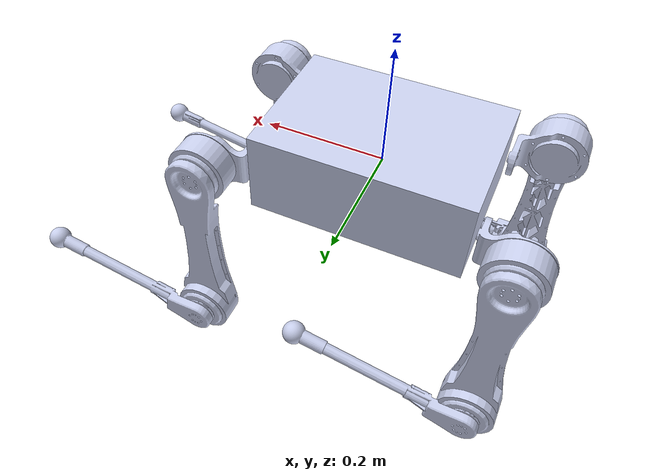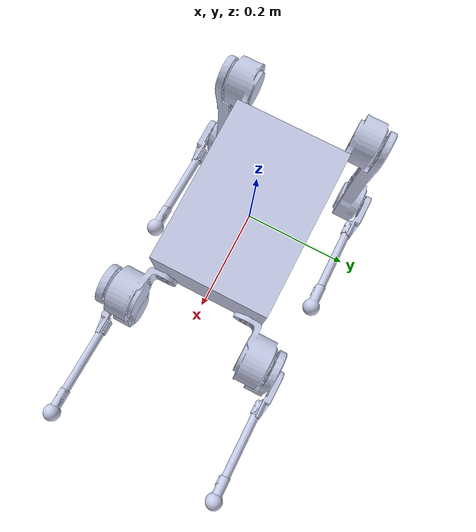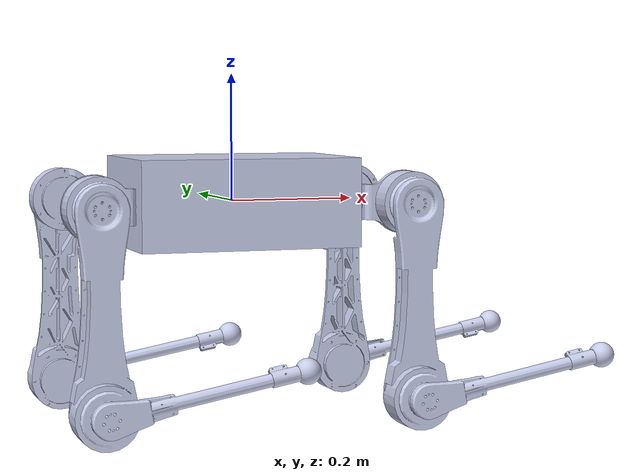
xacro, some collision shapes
<?xml version="1.0"?>

<robot xmlns:xacro="http://www.ros.org/wiki/xacro" name="lion">

    <xacro:include filename="$(find lion_description)/common/transmission.xacro"/>
    <xacro:include filename="$(find lion_description)/common/gazebo.xacro"/>
    <xacro:include filename="$(find lion_description)/common/imu.xacro"/>

        <!--Robot Model*******************************************************************************************-->
        <link name="base">
          <inertial>
            <origin rpy="0 0 0" xyz="-0.000638750070817345 -0.00672058356158241 -0.00556735378698432"/>
            <mass value="8.286"/>
            <inertia ixx="0.056529" ixy="-0.001107" ixz="-3.045E-05" iyy="0.14156" iyz="-0.0011531" izz="0.17939"/>
            </inertial>
          <visual>
            <origin rpy="0 0 0" xyz="0 0 0"/>
            <geometry>
              <mesh filename="package://lion_description/meshes/base_link.STL"/>
            </geometry>
            <material name="">
              <color rgba="0.792156862745098 0.819607843137255 0.933333333333333 1"/>
            </material>
          </visual>
          <collision>
            <origin rpy="0 0 0" xyz="0 0 0"/>
            <geometry>
                <box size="0.35 0.24 0.14"/>
            </geometry>
          </collision>
        </link>
        <link name="RF_hip">
          <inertial>
            <origin rpy="0 0 0" xyz="-0.0050797 -0.047183 4.172E-05"/>
            <mass value="1.095"/>
            <inertia ixx="0.0010035" ixy="-0.00021789" ixz="1.433E-06" iyy="0.0014762" iyz="1.005E-06" izz="0.0012507"/>
          </inertial>
          <visual>
            <origin rpy="0 0 0" xyz="0 0 0"/>
            <geometry>
              <mesh filename="package://lion_description/meshes/hip_Link.STL"/>
            </geometry>
            <material name="">
              <color rgba="0.79216 0.81961 0.93333 1"/>
            </material>
          </visual>
          <collision>
            <origin rpy="${pi/2.0} 0 0" xyz="0.0 -0.05 0"/>
            <geometry>
                <cylinder length="0.06" radius="0.05"/>
            </geometry>
          </collision>
        </link>
        <joint name="RF_HAA" type="revolute">
          <origin rpy="0.0 0.0 0 " xyz="0.2467 -0.09 0"/>
          <parent link="base"/>
          <child link="RF_hip"/>
          <axis xyz="1 0 0"/>
          <limit effort="55" lower="-1.0" upper="1.0" velocity="30"/>
        </joint>
        <link name="RF_thigh">
          <inertial>''
            <origin rpy="0 0 0" xyz="-2.7705E-05 -0.089684 -0.23198"/>
            <mass value="1.556"/>
            <inertia ixx="0.015631" ixy="-8.61E-07" ixz="-6.078E-06" iyy="0.016183" iyz="0.0004689" izz="0.0011163"/>
          </inertial>
          <visual>
            <origin rpy="0 0 0" xyz="0 0 0"/>
            <geometry>
              <mesh filename="package://lion_description/meshes/thigh_Link.STL"/>
            </geometry>
            <material name="">
              <color rgba="0.79216 0.81961 0.93333 1"/>
            </material>
          </visual>
          <collision>
            <origin rpy="${pi/2.0} 0 0" xyz="0 -0.09 -0.3"/>
            <geometry>
                <cylinder length="0.06" radius="0.05"/>
            </geometry>
          </collision>
        </link>
        <joint name="RF_HFE" type="revolute">
          <origin rpy="0 0.0 0" xyz="0 0 0"/>
          <parent link="RF_hip"/>
          <child link="RF_thigh"/>
          <axis xyz="0 1 0"/>
          <limit effort="55" lower="-3.0" upper="3.0" velocity="30"/>
        </joint>
        <link name="RF_calf">
          <inertial>
            <origin rpy="0 0 0" xyz="2.05E-06 -0.12517 -0.080832"/>
            <mass value="0.233"/>
            <inertia ixx="0.0033053" ixy="-3.64E-07" ixz="4.028E-06" iyy="0.0033126" iyz="-0.00013194" izz="4.3236E-05"/>
          </inertial>
          <visual>
            <origin rpy="0 0 0" xyz="0 0 0"/>
            <geometry>
              <mesh filename="package://lion_description/meshes/shank_Link.STL"/>
            </geometry>
            <material name="">
              <color rgba="0.79216 0.81961 0.93333 1"/>
            </material>
          </visual>
          <collision>
            <origin rpy="0 0 0" xyz="0 -0.119 -0.15"/>
            <geometry>
              <cylinder length="0.2" radius="0.01"/>
            </geometry>
          </collision>
        </link>
        <joint name="RF_KFE" type="revolute">
          <origin rpy="0 0 0" xyz="0 0 -0.3"/>
          <parent link="RF_thigh"/>
          <child link="RF_calf"/>
          <axis xyz="0 1 0"/>
          <limit effort="55" lower="-3.0" upper="-0.5" velocity="30"/>
        </joint>
        <link name="RF_FOOT">
          <inertial>
            <origin rpy="0 0 0" xyz="0.0002617 0.00017365 0.0085579"/>
            <mass value="0.01"/>
            <inertia ixx="0.001983" ixy="0.000245" ixz="0.000013"
                      iyy="0.002103" iyz="0.0000015" izz="0.000408"/>
          </inertial>
          <visual>
            <origin rpy="0 0 0" xyz="0 0 0"/>
            <geometry>
              <mesh filename="package://lion_description/meshes/foot_Link.STL"/>
            </geometry>
            <material name="">
              <color rgba="0.79216 0.81961 0.93333 1"/>
            </material>
          </visual>
          <collision>
            <origin rpy="0 0 0" xyz="0 0 0.002"/>
            <geometry>
                <sphere radius="0.02"/>
            </geometry>
          </collision>
        </link>
        <joint name="JointFR_foot" type="fixed">
          <origin rpy="0 0 0" xyz="0 -0.119 -0.3105"/>
          <parent link="RF_calf"/>
          <child link="RF_FOOT"/>
          <axis xyz="0 0 1"/>

        </joint>
        <link name="LF_hip">
          <inertial>
            <origin rpy="0 0 0" xyz="-0.0050797 -0.047183 4.172E-05"/>
            <mass value="1.095"/>
            <inertia ixx="0.0010035" ixy="-0.00021789" ixz="1.433E-06" iyy="0.0014762" iyz="1.005E-06" izz="0.0012507"/>
          </inertial>
          <visual>
            <origin rpy="0 0 0" xyz="0 0 0"/>
            <geometry>
              <mesh filename="package://lion_description/meshes/hip_Link.STL"/>
            </geometry>
            <material name="">
              <color rgba="0.79216 0.81961 0.93333 1"/>
            </material>
          </visual>
          <collision>
            <origin rpy="${pi/2.0} 0 0" xyz="0.0 -0.05 0"/>
            <geometry>
                <cylinder length="0.06" radius="0.05"/>
            </geometry>
          </collision>
        </link>
        <joint name="LF_HAA" type="revolute">
          <origin rpy="3.141592653589793 0.0 0 " xyz="0.2467 0.09 0"/>
          <parent link="base"/>
          <child link="LF_hip"/>
          <axis xyz="1 0 0"/>
          <limit effort="55" lower="-1.0" upper="1.0" velocity="30"/>
        </joint>
        <link name="LF_thigh">
          <inertial>
            <origin rpy="0 0 0" xyz="-2.7705E-05 -0.089684 -0.23198"/>
            <mass value="1.556"/>
            <inertia ixx="0.015631" ixy="-8.61E-07" ixz="-6.078E-06" iyy="0.016183" iyz="0.0004689" izz="0.0011163"/>
          </inertial>
          <visual>
            <origin rpy="0 0 0" xyz="0 0 0"/>
            <geometry>
              <mesh filename="package://lion_description/meshes/thigh_Link.STL"/>
            </geometry>
            <material name="">
              <color rgba="0.79216 0.81961 0.93333 1"/>
            </material>
          </visual>
          <collision>
            <origin rpy="${pi/2.0} 0 0" xyz="0 -0.09 -0.3"/>
            <geometry>
                <cylinder length="0.06" radius="0.05"/>
            </geometry>
          </collision>
        </link>
        <joint name="LF_HFE" type="revolute">
          <origin rpy="0 3.141592653589793 0" xyz="0 0 0"/>
          <parent link="LF_hip"/>
          <child link="LF_thigh"/>
          <axis xyz="0 -1 0"/>
          <limit effort="55" lower="-3.0" upper="3.0" velocity="30"/>
        </joint>
        <link name="LF_calf">
          <inertial>
            <origin rpy="0 0 0" xyz="2.05E-06 -0.12517 -0.080832"/>
            <mass value="0.233"/>
            <inertia ixx="0.0033053" ixy="-3.64E-07" ixz="4.028E-06" iyy="0.0033126" iyz="-0.00013194" izz="4.3236E-05"/>
          </inertial>
          <visual>
            <origin rpy="0 0 0" xyz="0 0 0"/>
            <geometry>
              <mesh filename="package://lion_description/meshes/shank_Link.STL"/>
            </geometry>
            <material name="">
              <color rgba="0.79216 0.81961 0.93333 1"/>
            </material>
          </visual>
          <collision>
            <origin rpy="0 0 0" xyz="0 -0.119 -0.15"/>
            <geometry>
              <cylinder length="0.2" radius="0.01"/>
            </geometry>
          </collision>
        </link>
        <joint name="LF_KFE" type="revolute">
          <origin rpy="0 0 0" xyz="0 0 -0.3"/>
          <parent link="LF_thigh"/>
          <child link="LF_calf"/>
          <axis xyz="0 -1 0"/>
          <limit effort="55" lower="-3.0" upper="-0.5" velocity="30"/>
        </joint>
        <link name="LF_FOOT">
          <inertial>
            <origin rpy="0 0 0" xyz="0.0002617 0.00017365 0.0085579"/>
            <mass value="0.01"/>
            <inertia ixx="0.001983" ixy="0.000245" ixz="0.000013"
                      iyy="0.002103" iyz="0.0000015" izz="0.000408"/>
          </inertial>
          <visual>
            <origin rpy="0 0 0" xyz="0 0 0"/>
            <geometry>
              <mesh filename="package://lion_description/meshes/foot_Link.STL"/>
            </geometry>
            <material name="">
              <color rgba="0.79216 0.81961 0.93333 1"/>
            </material>
          </visual>
          <collision>
            <origin rpy="0 0 0" xyz="0 0 0.002"/>
            <geometry>
                <sphere radius="0.02"/>
            </geometry>
          </collision>
        </link>
        <joint name="JointFL_foot" type="fixed">
          <origin rpy="0 0 0" xyz="0 -0.119 -0.3105"/>
          <parent link="LF_calf"/>
          <child link="LF_FOOT"/>
          <axis xyz="0 0 1"/>

        </joint>
        <link name="RH_hip">
          <inertial>
            <origin rpy="0 0 0" xyz="-0.0050797 -0.047183 4.172E-05"/>
            <mass value="1.095"/>
            <inertia ixx="0.0010035" ixy="-0.00021789" ixz="1.433E-06" iyy="0.0014762" iyz="1.005E-06" izz="0.0012507"/>
          </inertial>
          <visual>
            <origin rpy="0 0 0" xyz="0 0 0"/>
            <geometry>
              <mesh filename="package://lion_description/meshes/hip_Link.STL"/>
            </geometry>
            <material name="">
              <color rgba="0.79216 0.81961 0.93333 1"/>
            </material>
          </visual>
          <collision>
            <origin rpy="${pi/2.0} 0 0" xyz="0.0 -0.05 0"/>
            <geometry>
                <cylinder length="0.06" radius="0.05"/>
            </geometry>
          </collision>
        </link>
        <joint name="RH_HAA" type="revolute">
          <origin rpy="0.0 3.141592653589793 0 " xyz="-0.2467 -0.09 0"/>
          <parent link="base"/>
          <child link="RH_hip"/>
          <axis xyz="-1 0 0"/>
          <limit effort="55" lower="-1.0" upper="1.0" velocity="30"/>
        </joint>
        <link name="RH_thigh">
          <inertial>
            <origin rpy="0 0 0" xyz="-2.7705E-05 -0.089684 -0.23198"/>
            <mass value="1.556"/>
            <inertia ixx="0.015631" ixy="-8.61E-07" ixz="-6.078E-06" iyy="0.016183" iyz="0.0004689" izz="0.0011163"/>
          </inertial>
          <visual>
            <origin rpy="0 0 0" xyz="0 0 0"/>
            <geometry>
              <mesh filename="package://lion_description/meshes/thigh_Link.STL"/>
            </geometry>
            <material name="">
              <color rgba="0.79216 0.81961 0.93333 1"/>
            </material>
          </visual>
          <collision>
            <origin rpy="${pi/2.0} 0 0" xyz="0 -0.09 -0.3"/>
            <geometry>
                <cylinder length="0.06" radius="0.05"/>
            </geometry>
          </collision>
        </link>
        <joint name="RH_HFE" type="revolute">
          <origin rpy="0 3.141592653589793 0" xyz="0 0 0"/>
          <parent link="RH_hip"/>
          <child link="RH_thigh"/>
          <axis xyz="0 1 0"/>
          <limit effort="55" lower="-3.0" upper="3.0" velocity="30"/>
        </joint>
        <link name="RH_calf">
          <inertial>
            <origin rpy="0 0 0" xyz="2.05E-06 -0.12517 -0.080832"/>
            <mass value="0.233"/>
            <inertia ixx="0.0033053" ixy="-3.64E-07" ixz="4.028E-06" iyy="0.0033126" iyz="-0.00013194" izz="4.3236E-05"/>
          </inertial>
          <visual>
            <origin rpy="0 0 0" xyz="0 0 0"/>
            <geometry>
              <mesh filename="package://lion_description/meshes/shank_Link.STL"/>
            </geometry>
            <material name="">
              <color rgba="0.79216 0.81961 0.93333 1"/>
            </material>
          </visual>
          <collision>
            <origin rpy="0 0 0" xyz="0 -0.119 -0.15"/>
            <geometry>
              <cylinder length="0.2" radius="0.01"/>
            </geometry>
          </collision>
        </link>
        <joint name="RH_KFE" type="revolute">
          <origin rpy="0 0 0" xyz="0 0 -0.3"/>
          <parent link="RH_thigh"/>
          <child link="RH_calf"/>
          <axis xyz="0 1 0"/>
          <limit effort="55" lower="-3.0" upper="-0.5" velocity="30"/>
        </joint>
        <link name="RH_FOOT">
          <inertial>
            <origin rpy="0 0 0" xyz="0.0002617 0.00017365 0.0085579"/>
            <mass value="0.01"/>
            <inertia ixx="0.001983" ixy="0.000245" ixz="0.000013"
                      iyy="0.002103" iyz="0.0000015" izz="0.000408"/>
          </inertial>
          <visual>
            <origin rpy="0 0 0" xyz="0 0 0"/>
            <geometry>
              <mesh filename="package://lion_description/meshes/foot_Link.STL"/>
            </geometry>
            <material name="">
              <color rgba="0.79216 0.81961 0.93333 1"/>
            </material>
          </visual>
          <collision>
            <origin rpy="0 0 0" xyz="0 0 0.002"/>
            <geometry>
                <sphere radius="0.02"/>
            </geometry>
          </collision>
        </link>
        <joint name="JointHR_foot" type="fixed">
          <origin rpy="0 0 0" xyz="0 -0.119 -0.3105"/>
          <parent link="RH_calf"/>
          <child link="RH_FOOT"/>
          <axis xyz="0 0 1"/>

        </joint>
        <link name="LH_hip">
          <inertial>
            <origin rpy="0 0 0" xyz="-0.0050797 -0.047183 4.172E-05"/>
            <mass value="1.095"/>
            <inertia ixx="0.0010035" ixy="-0.00021789" ixz="1.433E-06" iyy="0.0014762" iyz="1.005E-06" izz="0.0012507"/>
          </inertial>
          <visual>
            <origin rpy="0 0 0" xyz="0 0 0"/>
            <geometry>
              <mesh filename="package://lion_description/meshes/hip_Link.STL"/>
            </geometry>
            <material name="">
              <color rgba="0.79216 0.81961 0.93333 1"/>
            </material>
          </visual>
          <collision>
            <origin rpy="${pi/2.0} 0 0" xyz="0.0 -0.05 0"/>
            <geometry>
                <cylinder length="0.06" radius="0.05"/>
            </geometry>
          </collision>
        </link>
        <joint name="LH_HAA" type="revolute">
          <origin rpy="3.141592653589793 3.141592653589793 0 " xyz="-0.2467 0.09 0"/>
          <parent link="base"/>
          <child link="LH_hip"/>
          <axis xyz="-1 0 0"/>
          <limit effort="55" lower="-1.0" upper="1.0" velocity="30"/>
        </joint>
        <link name="LH_thigh">
          <inertial>
            <origin rpy="0 0 0" xyz="-2.7705E-05 -0.089684 -0.23198"/>
            <mass value="1.556"/>
            <inertia ixx="0.015631" ixy="-8.61E-07" ixz="-6.078E-06" iyy="0.016183" iyz="0.0004689" izz="0.0011163"/>
          </inertial>
          <visual>
            <origin rpy="0 0 0" xyz="0 0 0"/>
            <geometry>
              <mesh filename="package://lion_description/meshes/thigh_Link.STL"/>
            </geometry>
            <material name="">
              <color rgba="0.79216 0.81961 0.93333 1"/>
            </material>
          </visual>
          <collision>
            <origin rpy="${pi/2.0} 0 0" xyz="0 -0.09 -0.3"/>
            <geometry>
                <cylinder length="0.06" radius="0.05"/>
            </geometry>
          </collision>
        </link>
        <joint name="LH_HFE" type="revolute">
          <origin rpy="0 6.283185307179586 0" xyz="0 0 0"/>
          <parent link="LH_hip"/>
          <child link="LH_thigh"/>
          <axis xyz="0 -1 0"/>
          <limit effort="55" lower="-3.0" upper="3.0" velocity="30"/>
        </joint>
        <link name="LH_calf">
          <inertial>
            <origin rpy="0 0 0" xyz="2.05E-06 -0.12517 -0.080832"/>
            <mass value="0.233"/>
            <inertia ixx="0.0033053" ixy="-3.64E-07" ixz="4.028E-06" iyy="0.0033126" iyz="-0.00013194" izz="4.3236E-05"/>
          </inertial>
          <visual>
            <origin rpy="0 0 0" xyz="0 0 0"/>
            <geometry>
              <mesh filename="package://lion_description/meshes/shank_Link.STL"/>
            </geometry>
            <material name="">
              <color rgba="0.79216 0.81961 0.93333 1"/>
            </material>
          </visual>
          <collision>
            <origin rpy="0 0 0" xyz="0 -0.119 -0.15"/>
            <geometry>
              <cylinder length="0.2" radius="0.01"/>
            </geometry>
          </collision>
        </link>
        <joint name="LH_KFE" type="revolute">
          <origin rpy="0 0 0" xyz="0 0 -0.3"/>
          <parent link="LH_thigh"/>
          <child link="LH_calf"/>
          <axis xyz="0 -1 0"/>
          <limit effort="55" lower="-3.0" upper="-0.5" velocity="30"/>
        </joint>
        <link name="LH_FOOT">
          <inertial>
            <origin rpy="0 0 0" xyz="0.0002617 0.00017365 0.0085579"/>
            <mass value="0.01"/>
            <inertia ixx="0.001983" ixy="0.000245" ixz="0.000013"
                      iyy="0.002103" iyz="0.0000015" izz="0.000408"/>
          </inertial>
          <visual>
            <origin rpy="0 0 0" xyz="0 0 0"/>
            <geometry>
              <mesh filename="package://lion_description/meshes/foot_Link.STL"/>
            </geometry>
            <material name="">
              <color rgba="0.79216 0.81961 0.93333 1"/>
            </material>
          </visual>
          <collision>
            <origin rpy="0 0 0" xyz="0 0 0.002"/>
            <geometry>
                <sphere radius="0.02"/>
            </geometry>
          </collision>
        </link>
        <joint name="JointHL_foot" type="fixed">
          <origin rpy="0 0 0" xyz="0 -0.119 -0.3105"/>
          <parent link="LH_calf"/>
          <child link="LH_FOOT"/>
          <axis xyz="0 0 1"/>

        </joint>

        <xacro:IMU connected_to="base" imu_name="unitree_imu" xyz="0. 0. 0." rpy="0. 0. 0."/>
        <xacro:leg_transmission prefix="RF"/>
        <xacro:leg_transmission prefix="LF"/>
        <xacro:leg_transmission prefix="RH"/>
        <xacro:leg_transmission prefix="LH"/>

        <gazebo reference="JointHL_foot">
          <disableFixedJointLumping>true</disableFixedJointLumping>
        </gazebo>
        <gazebo reference="JointHR_foot">
          <disableFixedJointLumping>true</disableFixedJointLumping>
        </gazebo>
        <gazebo reference="JointFL_foot">
          <disableFixedJointLumping>true</disableFixedJointLumping>
        </gazebo>
        <gazebo reference="JointFR_foot">
          <disableFixedJointLumping>true</disableFixedJointLumping>
        </gazebo>

</robot>

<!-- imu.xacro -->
<robot xmlns:xacro="http://www.ros.org/wiki/xacro" name="imu">
  <xacro:macro name="IMU" params="connected_to imu_name xyz:='0 0 0' rpy:='0 0 0' ">
    <!-- Imu is fixed to the base link -->
    <joint name="${imu_name}_joint" type="fixed">
      <origin xyz="${xyz}" rpy="${rpy}" />
      <parent link="${connected_to}" />
      <child link="${imu_name}" />
    </joint>
    <!-- Imu link -->
    <link name="${imu_name}">
      <inertial>
        <mass value="0.01" />
        <origin rpy="0 0 0" xyz="0 0 0" />
        <inertia ixx="0.000001" ixy="0" ixz="0" iyy="0.000001" iyz="0" izz="0.000001" />
      </inertial>
      <visual>
        <origin rpy="0 0 0" xyz="0 0 0" />
        <geometry>
          <box size="0.015 0.015 0.004" />
        </geometry>
      </visual>
      <material name="orange">
        <color rgba="255 108 10 255" />
      </material>
    </link>
    <gazebo reference="${imu_name}">
      <material>Gazebo/Orange</material>
    </gazebo>
    <gazebo reference="${imu_name}_joint">
      <disableFixedJointLumping>true</disableFixedJointLumping>
    </gazebo>
  </xacro:macro>
</robot>
